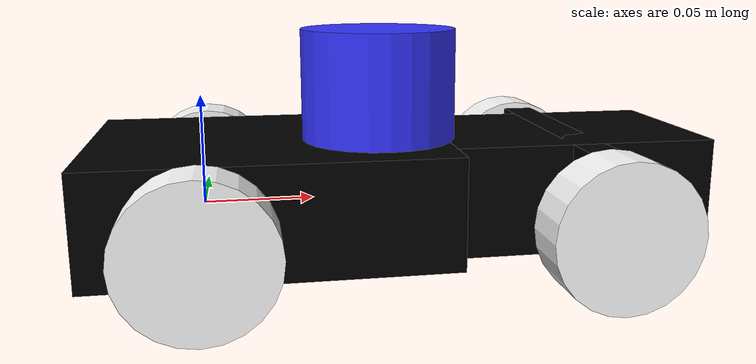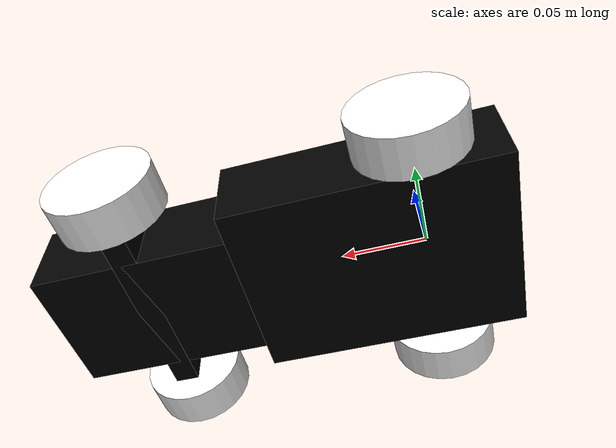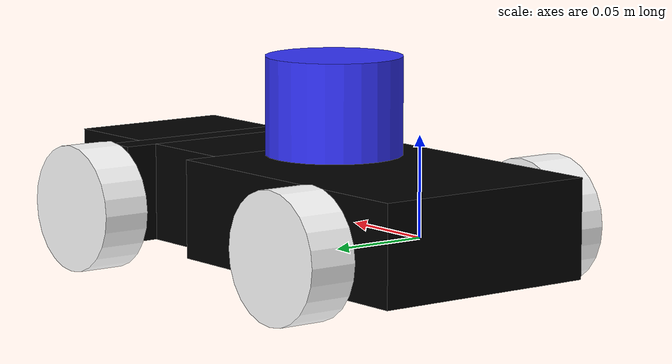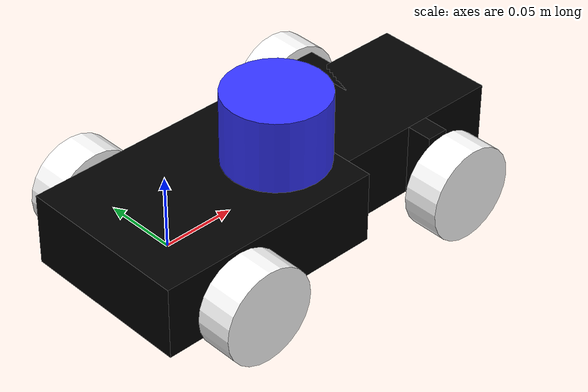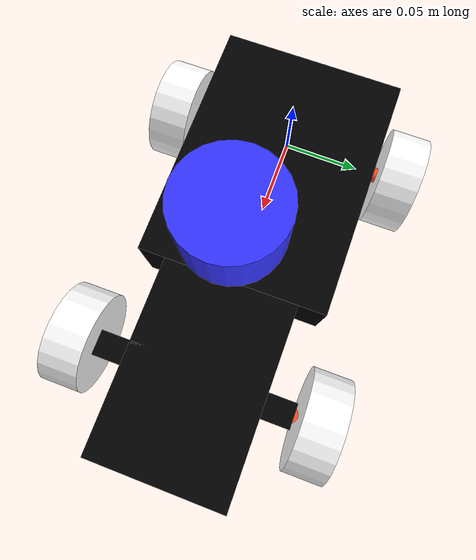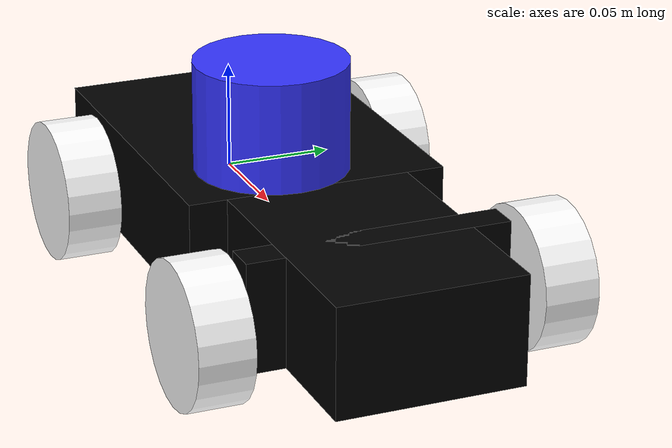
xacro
<?xml version="1.0"?>
<robot xmlns:xacro="http://www.ros.org/wiki/xacro"  name="robot">

    <xacro:include filename="$(find my_autonomous_car)/description/robot_core.xacro"/>
    <xacro:include filename="$(find my_autonomous_car)/description/robot.gazebo.xacro"/>
    <xacro:include filename="$(find my_autonomous_car)/description/robot.ros2.xacro"/>
    <xacro:include filename="$(find my_autonomous_car)/description/lidar.xacro" />

</robot>

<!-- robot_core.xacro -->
<robot xmlns:xacro="http://www.ros.org/wiki/xacro">

  <xacro:include filename="inertial_macros.xacro"/>
  <xacro:property name="pi" value="3.141592653589793"/>

  <material name="white">
    <color rgba="1 1 1 1"/>
  </material>

  <material name="orange">
    <color rgba="1 0.3 0.1 1"/>
  </material>

  <material name="blue">
    <color rgba="0.2 0.2 1 1"/>
  </material>

  <material name="black">
    <color rgba="0 0 0 1"/>
  </material>

  <!-- BASE LINK -->
  <link name="base_link">
    <origin xyz="0 0 0.07 "/>
  </link>

  <joint name="base_footprint_joint" type="fixed">
    <parent link="base_link"/>
    <child link="base_footprint"/>
    <origin xyz="0 0 0" rqt="0 0 0"/>
  </joint>

  <link name="base_footprint"/>

  <!-- BACK CHASSIS LINK -->
  <joint name="back_chassis_joint" type="fixed">
    <parent link="base_link"/>
    <child link="back_chassis"/>
    <origin xyz="-0.05 0 -0.02 "/>
  </joint>

  <link name="back_chassis">
    <visual>
      <origin xyz="0.08 0 0.025"/>
      <geometry>
        <box size="0.16 0.12 0.05"/>
      </geometry>
      <material name="black"/>
    </visual>

    <collision>
      <origin xyz="0.08 0 0.025"/>
      <geometry>
        <box size="0.16 0.12 0.05"/>
      </geometry>
    </collision>

    <xacro:inertial_box mass="0.9" x="0.16" y="0.12" z="0.05">
      <origin xyz="0.08 0 0.025" rpy="0 0 0"/>
    </xacro:inertial_box>
  </link>

  <gazebo reference="back_chassis">
    <material>Gazebo/Black</material>
  </gazebo>

  <!-- FRONT CHASSIS LINK -->
  <joint name="chassis_front_joint" type="fixed">
    <parent link="back_chassis"/>
    <child link="front_chassis"/>
    <origin xyz="0.16 0 0 "/>
  </joint>

  <link name="front_chassis">
    <visual>
      <origin xyz="0.06 0 0.025"/>
      <geometry>
        <box size="0.12 0.085 0.05"/>
      </geometry>
      <material name="black"/>
    </visual>

    <collision>
      <origin xyz="0.06 0 0.025"/>
      <geometry>
        <box size="0.12 0.085 0.05"/>
      </geometry>
    </collision>

    <xacro:inertial_box mass="0.6" x="0.12" y="0.085" z="0.05">
      <origin xyz="0.06 0 0.025" rpy="0 0 0"/>
    </xacro:inertial_box>
  </link>

  <gazebo reference="front_chassis">
    <material>Gazebo/Black</material>
  </gazebo>

  <!-- STEERING ROD -->
  <joint name="steering_rod_joint" type="fixed">
    <parent link="base_link"/>
    <child link="steering_rod"/>
    <origin xyz="0.17 0 0.005"/>
  </joint>

  <link name="steering_rod">
    <visual>
      <origin xyz="0 0 0"/>
      <geometry>
        <box size="0.015 0.12 0.05"/>
      </geometry>
      <material name="black"/>
    </visual>

    <collision>
      <origin xyz="0 0 0"/>
      <geometry>
        <box size="0.015 0.12 0.05"/>
      </geometry>
    </collision>

    <xacro:inertial_box mass="0.25" x="0.015" y="0.12" z="0.05">
      <origin xyz="0 0 0" rpy="0 0 0"/>
    </xacro:inertial_box>
  </link>

  <gazebo reference="steering_rod">
    <material>Gazebo/Black</material>
  </gazebo>

  <!-- LEFT BACK WHEEL'S AXIS -->
  <joint name="left_back_axis_joint" type="fixed">
    <parent link="base_link"/>
    <child link="left_back_axis"/>
    <origin xyz="0 0.06 0" rpy="-${pi/2} 0 0"/>
  </joint>

  <link name="left_back_axis">
    <visual>
      <geometry>
        <cylinder radius="0.005" length="0.01"/>
      </geometry>
      <material name="orange"/>
    </visual>

    <collision>
      <geometry>
        <cylinder radius="0.005" length="0.01"/>
      </geometry>
    </collision>

    <xacro:inertial_cylinder mass="0.02" length="0.01" radius="0.005">
      <origin xyz="0 0 0" rpy="0 0 0"/>
    </xacro:inertial_cylinder>
  </link>

  <gazebo reference="left_back_axis">
    <material>Gazebo/Orange</material>
  </gazebo>

  <!-- LEFT BACK WHEEL -->
  <joint name="left_back_wheel_joint" type="continuous">
    <parent link="left_back_axis"/>
    <child link="left_back_wheel"/>
    <origin xyz="0 0 0.0175"/>
    <axis xyz="0 0 1"/>
    <limit effort="5.0" velocity="50.0"/>
    <dynamics damping="0.2" friction="0.0"/>
  </joint>

  <link name="left_back_wheel">
    <visual>
      <geometry>
        <cylinder radius="0.0325" length="0.025"/>
      </geometry>
      <material name="white"/>
    </visual>

    <collision>
      <geometry>
        <cylinder radius="0.0325" length="0.025"/>
      </geometry>
    </collision>

    <xacro:inertial_cylinder mass="0.12" length="0.025" radius="0.0325">
      <origin xyz="0 0 0" rpy="0 0 0"/>
    </xacro:inertial_cylinder>
  </link>

  <gazebo reference="left_back_wheel">
    <material>Gazebo/White</material>
    <mu>1.2</mu>
    <mu2>1.0</mu2>
  </gazebo>

  <!-- RIGHT BACK AXIS -->
  <joint name="right_back_axis_joint" type="fixed">
    <parent link="base_link"/>
    <child link="right_back_axis"/>
    <origin xyz="0 -0.06 0" rpy="${pi/2} 0 0"/>
  </joint>

  <link name="right_back_axis">
    <visual>
      <geometry>
        <cylinder radius="0.005" length="0.01"/>
      </geometry>
      <material name="orange"/>
    </visual>

    <collision>
      <geometry>
        <cylinder radius="0.005" length="0.01"/>
      </geometry>
    </collision>

    <xacro:inertial_cylinder mass="0.02" length="0.01" radius="0.005">
      <origin xyz="0 0 0" rpy="0 0 0"/>
    </xacro:inertial_cylinder>
  </link>

  <gazebo reference="right_back_axis">
    <material>Gazebo/Orange</material>
  </gazebo>

  <!-- RIGHT BACK WHEEL -->
  <joint name="right_back_wheel_joint" type="continuous">
    <parent link="right_back_axis"/>
    <child link="right_back_wheel"/>
    <origin xyz="0 0 0.0175"/>
    <axis xyz="0 0 -1"/>
    <limit effort="5.0" velocity="50.0"/>
    <dynamics damping="0.2" friction="0.0"/>
  </joint>

  <link name="right_back_wheel">
    <visual>
      <geometry>
        <cylinder radius="0.0325" length="0.025"/>
      </geometry>
      <material name="white"/>
    </visual>

    <collision>
      <geometry>
        <cylinder radius="0.0325" length="0.025"/>
      </geometry>
    </collision>

    <xacro:inertial_cylinder mass="0.12" length="0.025" radius="0.0325">
      <origin xyz="0 0 0" rpy="0 0 0"/>
    </xacro:inertial_cylinder>
  </link>

  <gazebo reference="right_back_wheel">
    <material>Gazebo/White</material>
    <mu>1.2</mu>
    <mu2>1.0</mu2>
  </gazebo>

  <!-- FRONT LEFT AXIS -->
  <joint name="left_front_axis_joint" type="revolute">
    <parent link="base_link"/>
    <child link="left_front_axis"/>
    <origin xyz="0.17 0.06 0" rpy="0 0 0"/>
    <axis xyz="0 0 1"/>
    <limit lower="-0.541052" upper="0.698132" effort="5.0" velocity="2.0"/>
    <dynamics damping="0.5" friction="0.1"/>
  </joint>

  <link name="left_front_axis">
    <visual>
      <geometry>
        <cylinder radius="0.005" length="0.01"/>
      </geometry>
      <material name="orange"/>
    </visual>

    <collision>
      <geometry>
        <cylinder radius="0.005" length="0.01"/>
      </geometry>
    </collision>

    <xacro:inertial_cylinder mass="0.02" length="0.01" radius="0.005">
      <origin xyz="0 0 0" rpy="0 0 0"/>
    </xacro:inertial_cylinder>
  </link>

  <gazebo reference="left_front_axis">
    <material>Gazebo/Orange</material>
  </gazebo>

  <!-- FRONT LEFT WHEEL -->
  <joint name="left_front_wheel_joint" type="continuous">
    <parent link="left_front_axis"/>
    <child link="left_front_wheel"/>
    <origin xyz="0 0.0175 0" rpy="-${pi/2} 0 0"/>
    <axis xyz="0 0 1"/>
    <limit effort="5.0" velocity="50.0"/>
    <dynamics damping="0.2" friction="0.0"/>
  </joint>

  <link name="left_front_wheel">
    <visual>
      <geometry>
        <cylinder radius="0.0325" length="0.025"/>
      </geometry>
      <material name="white"/>
    </visual>

    <collision>
      <geometry>
        <cylinder radius="0.0325" length="0.025"/>
      </geometry>
    </collision>

    <xacro:inertial_cylinder mass="0.12" length="0.025" radius="0.0325">
      <origin xyz="0 0 0" rpy="0 0 0"/>
    </xacro:inertial_cylinder>
  </link>

  <gazebo reference="left_front_wheel">
    <material>Gazebo/White</material>
    <mu>1.2</mu>
    <mu2>1.0</mu2>
  </gazebo>

  <!-- FRONT RIGHT AXIS -->
  <joint name="right_front_axis_joint" type="revolute">
    <parent link="base_link"/>
    <child link="right_front_axis"/>
    <origin xyz="0.17 -0.06 0"/>
    <axis xyz="0 0 1"/>
    <limit lower="-0.698132" upper="0.541052" effort="5.0" velocity="2.0"/>
    <dynamics damping="0.5" friction="0.1"/>
  </joint>

  <link name="right_front_axis">
    <visual>
      <geometry>
        <cylinder radius="0.005" length="0.01"/>
      </geometry>
      <material name="orange"/>
    </visual>

    <collision>
      <geometry>
        <cylinder radius="0.005" length="0.01"/>
      </geometry>
    </collision>

    <xacro:inertial_cylinder mass="0.02" length="0.01" radius="0.005">
      <origin xyz="0 0 0" rpy="0 0 0"/>
    </xacro:inertial_cylinder>
  </link>

  <gazebo reference="right_front_axis">
    <material>Gazebo/Orange</material>
  </gazebo>

  <!-- FRONT RIGHT WHEEL -->
  <joint name="right_front_wheel_joint" type="continuous">
    <parent link="right_front_axis"/>
    <child link="right_front_wheel"/>
    <origin xyz="0 -0.0175 0" rpy="${pi/2} 0 0"/>
    <axis xyz="0 0 -1"/>
    <limit effort="5.0" velocity="50.0"/>
    <dynamics damping="0.2" friction="0.0"/>
  </joint>

  <link name="right_front_wheel">
    <visual>
      <geometry>
        <cylinder radius="0.0325" length="0.025"/>
      </geometry>
      <material name="white"/>
    </visual>

    <collision>
      <geometry>
        <cylinder radius="0.0325" length="0.025"/>
      </geometry>
    </collision>

    <xacro:inertial_cylinder mass="0.12" length="0.025" radius="0.0325">
      <origin xyz="0 0 0" rpy="0 0 0"/>
    </xacro:inertial_cylinder>
  </link>

  <gazebo reference="right_front_wheel">
    <material>Gazebo/White</material>
    <mu>1.2</mu>
    <mu2>1.0</mu2>
  </gazebo>

</robot>

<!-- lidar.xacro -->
<robot xmlns:xacro="http://www.ros.org/wiki/xacro">

  <joint name="laser_joint" type="fixed">
    <parent link="back_chassis"/>
    <child link="laser"/>
    <origin xyz="0.13 -0.01 0.075" rpy="0 0 ${pi/2}"/>
  </joint>

  <link name="laser">
    <visual>
      <origin xyz="0 0 0" rpy="0 0 0"/>
      <geometry>
        <cylinder radius="0.035" length="0.05"/>
      </geometry>
      <material name="blue"/>
    </visual>

    <collision>
      <origin xyz="0 0 0" rpy="0 0 0"/>
      <geometry>
        <cylinder radius="0.035" length="0.05"/>
      </geometry>
    </collision>

    <inertial>
      <mass value="0.01"/>
      <origin xyz="0 0 0" rpy="0 0 0"/>
      <inertia ixx="${0.01 * (3 * 0.035 * 0.035 + 0.05 * 0.05) / 12}"
               ixy="0.0"
               ixz="0.0"
               iyy="${0.01 * (3 * 0.035 * 0.035 + 0.05 * 0.05) / 12}"
               iyz="0.0"
               izz="${0.01 * 0.035 * 0.035 / 2}"/>
    </inertial>
  </link>

</robot>
